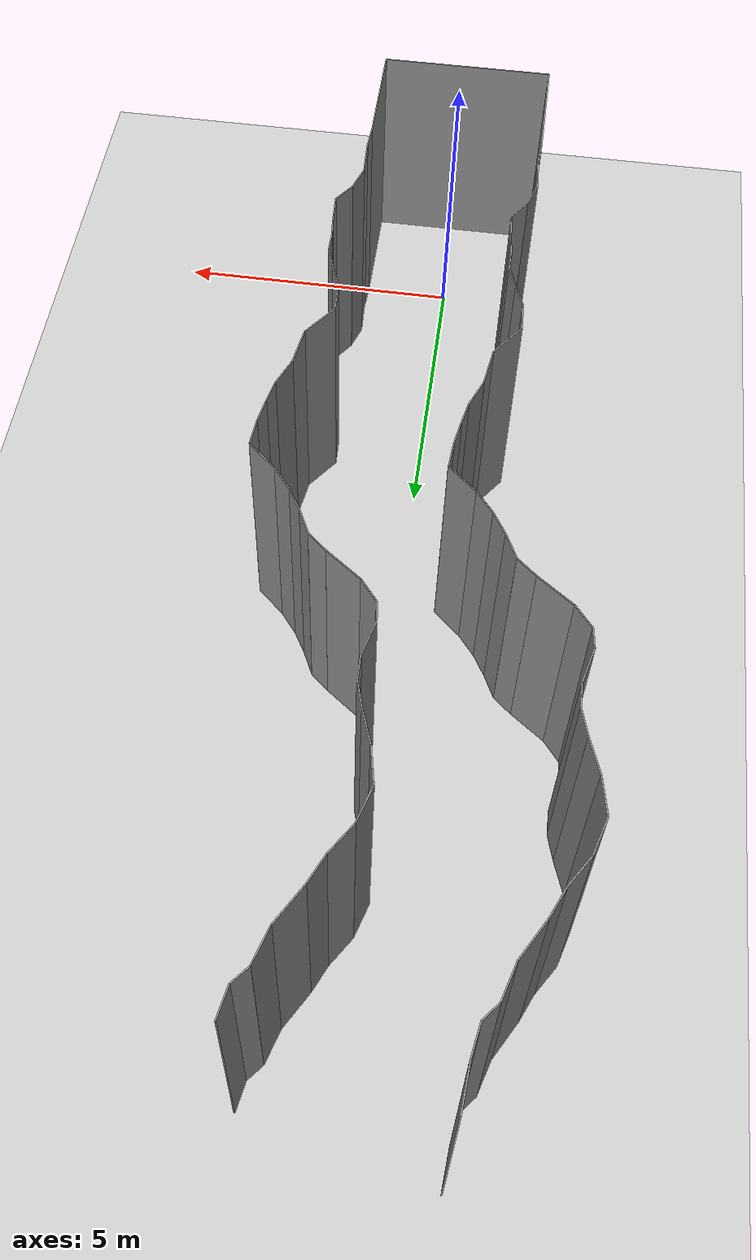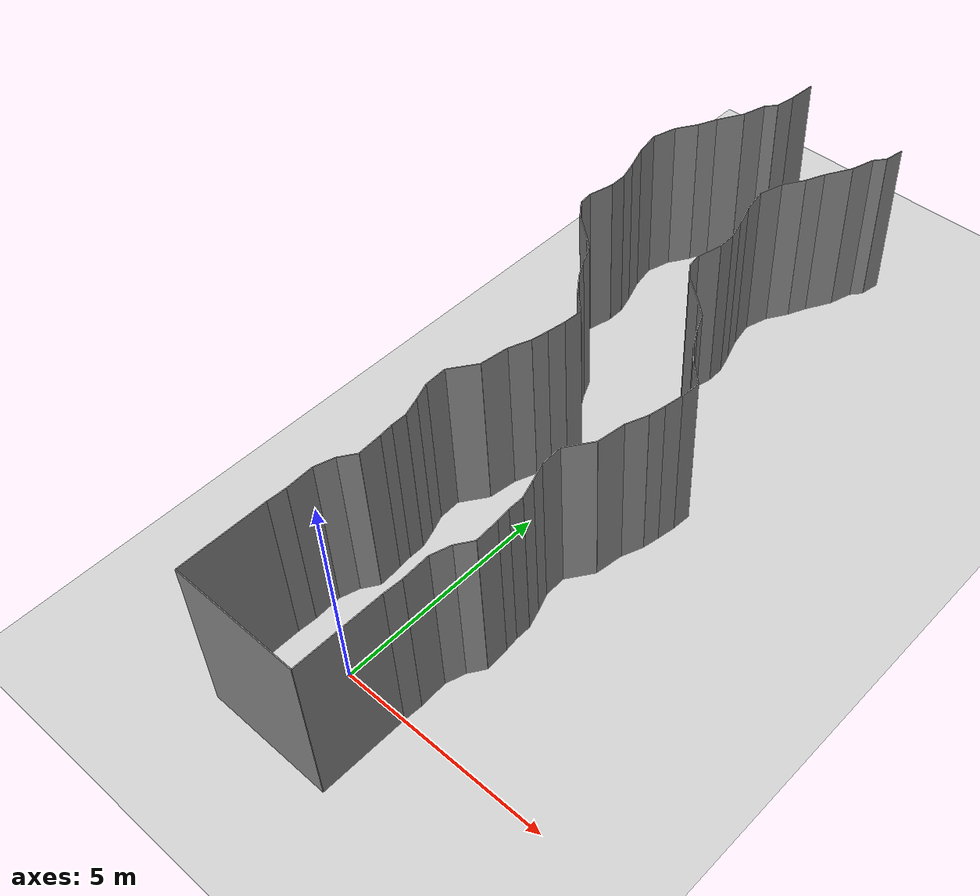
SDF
<sdf version="1.6">
 <world name="default">
  <model name="ground_plane">
   <static>1</static>
   <link name="link">
    <collision name="collision">
     <geometry><plane><normal>0 0 1</normal><size>200 200</size></plane></geometry>
     <surface><friction><ode><mu>100</mu><mu2>50</mu2></ode></friction></surface>
    </collision>
    <visual name="visual">
     <cast_shadows>0</cast_shadows>
     <geometry><plane><normal>0 0 1</normal><size>200 200</size></plane></geometry>
     <material>
      <script><uri>file://media/materials/scripts/gazebo.material</uri><name>Gazebo/Grey</name></script>
     </material>
    </visual>
   </link>
   <pose>0 100 0 0 -0 0</pose>
  </model>
  <model name="wall_back">
   <static>1</static>
   <pose>0.0 -2 2 0.0 0 0.0</pose>
   <link name="link">
    <collision name="collision"><geometry><box><size>3 0.02 4</size></box></geometry></collision>
    <visual name="visual">
     <material>
      <script><name>Gazebo/Grey</name><uri>file://media/materials/scripts/gazebo.material</uri></script>
     </material>
     <geometry><box><size>3 0.02 4</size></box></geometry>
    </visual>
   </link>
  </model>
  <model name="wall_left">
   <static>1</static>
   <pose>1.5 -1 2 0 0 0.00</pose>
   <link name="link">
    <collision name="collision"><geometry><box><size>0.02 2 4</size></box></geometry></collision>
    <visual name="visual">
     <material>
      <script><name>Gazebo/Grey</name><uri>file://media/materials/scripts/gazebo.material</uri></script>
     </material>
     <geometry><box><size>0.02 2 4</size></box></geometry>
    </visual>
   </link>
  </model>
  <model name="wall_right">
   <static>1</static>
   <pose>-1.5 -1 2 0 0 0.00</pose>
   <link name="link">
    <collision name="collision"><geometry><box><size>0.02 2 4</size></box></geometry></collision>
    <visual name="visual">
     <material>
      <script><name>Gazebo/Grey</name><uri>file://media/materials/scripts/gazebo.material</uri></script>
     </material>
     <geometry><box><size>0.02 2 4</size></box></geometry>
    </visual>
   </link>
  </model>
  <model name="wall_0">
   <static>1</static>
   <pose>-1.4882764382496583 0.2142436278795868 2 0 0 -0.05466618233456685</pose>
   <link name="link">
    <collision name="collision"><geometry><box><size>0.02 0.429128297772 4</size></box></geometry></collision>
    <visual name="visual">
     <material>
      <script><name>Gazebo/Grey</name><uri>file://media/materials/scripts/gazebo.material</uri></script>
     </material>
     <geometry><box><size>0.02 0.429128297772 4</size></box></geometry>
    </visual>
   </link>
  </model>
  <model name="wall_1">
   <static>1</static>
   <pose>1.5117235617503417 0.2142436278795868 2 0 0 -0.05466618233456685</pose>
   <link name="link">
    <collision name="collision"><geometry><box><size>0.02 0.429128297772 4</size></box></geometry></collision>
    <visual name="visual">
     <material>
      <script><name>Gazebo/Grey</name><uri>file://media/materials/scripts/gazebo.material</uri></script>
     </material>
     <geometry><box><size>0.02 0.429128297772 4</size></box></geometry>
    </visual>
   </link>
  </model>
  <model name="wall_2">
   <static>1</static>
   <pose>-1.4906252148911652 0.7485332617188468 2 0 0 0.04394143271486499</pose>
   <link name="link">
    <collision name="collision"><geometry><box><size>0.02 0.640710470146 4</size></box></geometry></collision>
    <visual name="visual">
     <material>
      <script><name>Gazebo/Grey</name><uri>file://media/materials/scripts/gazebo.material</uri></script>
     </material>
     <geometry><box><size>0.02 0.640710470146 4</size></box></geometry>
    </visual>
   </link>
  </model>
  <model name="wall_3">
   <static>1</static>
   <pose>1.5093747851088348 0.7485332617188468 2 0 0 0.04394143271486499</pose>
   <link name="link">
    <collision name="collision"><geometry><box><size>0.02 0.640710470146 4</size></box></geometry></collision>
    <visual name="visual">
     <material>
      <script><name>Gazebo/Grey</name><uri>file://media/materials/scripts/gazebo.material</uri></script>
     </material>
     <geometry><box><size>0.02 0.640710470146 4</size></box></geometry>
    </visual>
   </link>
  </model>
  <model name="wall_4">
   <static>1</static>
   <pose>-1.4351299684521113 1.28706230178726 2 0 0 -0.3082616422023971</pose>
   <link name="link">
    <collision name="collision"><geometry><box><size>0.02 0.458582533695 4</size></box></geometry></collision>
    <visual name="visual">
     <material>
      <script><name>Gazebo/Grey</name><uri>file://media/materials/scripts/gazebo.material</uri></script>
     </material>
     <geometry><box><size>0.02 0.458582533695 4</size></box></geometry>
    </visual>
   </link>
  </model>
  <model name="wall_5">
   <static>1</static>
   <pose>1.5648700315478887 1.28706230178726 2 0 0 -0.3082616422023971</pose>
   <link name="link">
    <collision name="collision"><geometry><box><size>0.02 0.458582533695 4</size></box></geometry></collision>
    <visual name="visual">
     <material>
      <script><name>Gazebo/Grey</name><uri>file://media/materials/scripts/gazebo.material</uri></script>
     </material>
     <geometry><box><size>0.02 0.458582533695 4</size></box></geometry>
    </visual>
   </link>
  </model>
  <model name="wall_6">
   <static>1</static>
   <pose>-1.246430500729539 1.6787287137718458 2 0 0 -0.6025551399527813</pose>
   <link name="link">
    <collision name="collision"><geometry><box><size>0.02 0.420404033729 4</size></box></geometry></collision>
    <visual name="visual">
     <material>
      <script><name>Gazebo/Grey</name><uri>file://media/materials/scripts/gazebo.material</uri></script>
     </material>
     <geometry><box><size>0.02 0.420404033729 4</size></box></geometry>
    </visual>
   </link>
  </model>
  <model name="wall_7">
   <static>1</static>
   <pose>1.753569499270461 1.6787287137718458 2 0 0 -0.6025551399527813</pose>
   <link name="link">
    <collision name="collision"><geometry><box><size>0.02 0.420404033729 4</size></box></geometry></collision>
    <visual name="visual">
     <material>
      <script><name>Gazebo/Grey</name><uri>file://media/materials/scripts/gazebo.material</uri></script>
     </material>
     <geometry><box><size>0.02 0.420404033729 4</size></box></geometry>
    </visual>
   </link>
  </model>
  <model name="wall_8">
   <static>1</static>
   <pose>-1.1423110355689778 2.126357916920006 2 0 0 0.054646381465795514</pose>
   <link name="link">
    <collision name="collision"><geometry><box><size>0.02 0.549712229064 4</size></box></geometry></collision>
    <visual name="visual">
     <material>
      <script><name>Gazebo/Grey</name><uri>file://media/materials/scripts/gazebo.material</uri></script>
     </material>
     <geometry><box><size>0.02 0.549712229064 4</size></box></geometry>
    </visual>
   </link>
  </model>
  <model name="wall_9">
   <static>1</static>
   <pose>1.8576889644310222 2.126357916920006 2 0 0 0.054646381465795514</pose>
   <link name="link">
    <collision name="collision"><geometry><box><size>0.02 0.549712229064 4</size></box></geometry></collision>
    <visual name="visual">
     <material>
      <script><name>Gazebo/Grey</name><uri>file://media/materials/scripts/gazebo.material</uri></script>
     </material>
     <geometry><box><size>0.02 0.549712229064 4</size></box></geometry>
    </visual>
   </link>
  </model>
  <model name="wall_10">
   <static>1</static>
   <pose>-1.174572083154149 2.5600124033881193 2 0 0 0.10791885154700406</pose>
   <link name="link">
    <collision name="collision"><geometry><box><size>0.02 0.320280583436 4</size></box></geometry></collision>
    <visual name="visual">
     <material>
      <script><name>Gazebo/Grey</name><uri>file://media/materials/scripts/gazebo.material</uri></script>
     </material>
     <geometry><box><size>0.02 0.320280583436 4</size></box></geometry>
    </visual>
   </link>
  </model>
  <model name="wall_11">
   <static>1</static>
   <pose>1.825427916845851 2.5600124033881193 2 0 0 0.10791885154700406</pose>
   <link name="link">
    <collision name="collision"><geometry><box><size>0.02 0.320280583436 4</size></box></geometry></collision>
    <visual name="visual">
     <material>
      <script><name>Gazebo/Grey</name><uri>file://media/materials/scripts/gazebo.material</uri></script>
     </material>
     <geometry><box><size>0.02 0.320280583436 4</size></box></geometry>
    </visual>
   </link>
  </model>
  <model name="wall_12">
   <static>1</static>
   <pose>-1.1913653444094687 2.899216656177083 2 0 0 -0.0025298821110752733</pose>
   <link name="link">
    <collision name="collision"><geometry><box><size>0.02 0.359992335216 4</size></box></geometry></collision>
    <visual name="visual">
     <material>
      <script><name>Gazebo/Grey</name><uri>file://media/materials/scripts/gazebo.material</uri></script>
     </material>
     <geometry><box><size>0.02 0.359992335216 4</size></box></geometry>
    </visual>
   </link>
  </model>
  <model name="wall_13">
   <static>1</static>
   <pose>1.8086346555905313 2.899216656177083 2 0 0 -0.0025298821110752733</pose>
   <link name="link">
    <collision name="collision"><geometry><box><size>0.02 0.359992335216 4</size></box></geometry></collision>
    <visual name="visual">
     <material>
      <script><name>Gazebo/Grey</name><uri>file://media/materials/scripts/gazebo.material</uri></script>
     </material>
     <geometry><box><size>0.02 0.359992335216 4</size></box></geometry>
    </visual>
   </link>
  </model>
  <model name="wall_14">
   <static>1</static>
   <pose>-1.2577946661947295 3.281178483480198 2 0 0 0.3198002047015978</pose>
   <link name="link">
    <collision name="collision"><geometry><box><size>0.02 0.425506390902 4</size></box></geometry></collision>
    <visual name="visual">
     <material>
      <script><name>Gazebo/Grey</name><uri>file://media/materials/scripts/gazebo.material</uri></script>
     </material>
     <geometry><box><size>0.02 0.425506390902 4</size></box></geometry>
    </visual>
   </link>
  </model>
  <model name="wall_15">
   <static>1</static>
   <pose>1.7422053338052705 3.281178483480198 2 0 0 0.3198002047015978</pose>
   <link name="link">
    <collision name="collision"><geometry><box><size>0.02 0.425506390902 4</size></box></geometry></collision>
    <visual name="visual">
     <material>
      <script><name>Gazebo/Grey</name><uri>file://media/materials/scripts/gazebo.material</uri></script>
     </material>
     <geometry><box><size>0.02 0.425506390902 4</size></box></geometry>
    </visual>
   </link>
  </model>
  <model name="wall_16">
   <static>1</static>
   <pose>-1.3988093052747013 3.678838255260796 2 0 0 0.3621035368704639</pose>
   <link name="link">
    <collision name="collision"><geometry><box><size>0.02 0.418526985288 4</size></box></geometry></collision>
    <visual name="visual">
     <material>
      <script><name>Gazebo/Grey</name><uri>file://media/materials/scripts/gazebo.material</uri></script>
     </material>
     <geometry><box><size>0.02 0.418526985288 4</size></box></geometry>
    </visual>
   </link>
  </model>
  <model name="wall_17">
   <static>1</static>
   <pose>1.6011906947252987 3.678838255260796 2 0 0 0.3621035368704639</pose>
   <link name="link">
    <collision name="collision"><geometry><box><size>0.02 0.418526985288 4</size></box></geometry></collision>
    <visual name="visual">
     <material>
      <script><name>Gazebo/Grey</name><uri>file://media/materials/scripts/gazebo.material</uri></script>
     </material>
     <geometry><box><size>0.02 0.418526985288 4</size></box></geometry>
    </visual>
   </link>
  </model>
  <model name="wall_18">
   <static>1</static>
   <pose>-1.4835313058364274 4.134646809943204 2 0 0 0.04069816215118509</pose>
   <link name="link">
    <collision name="collision"><geometry><box><size>0.02 0.520661173779 4</size></box></geometry></collision>
    <visual name="visual">
     <material>
      <script><name>Gazebo/Grey</name><uri>file://media/materials/scripts/gazebo.material</uri></script>
     </material>
     <geometry><box><size>0.02 0.520661173779 4</size></box></geometry>
    </visual>
   </link>
  </model>
  <model name="wall_19">
   <static>1</static>
   <pose>1.5164686941635726 4.134646809943204 2 0 0 0.04069816215118509</pose>
   <link name="link">
    <collision name="collision"><geometry><box><size>0.02 0.520661173779 4</size></box></geometry></collision>
    <visual name="visual">
     <material>
      <script><name>Gazebo/Grey</name><uri>file://media/materials/scripts/gazebo.material</uri></script>
     </material>
     <geometry><box><size>0.02 0.520661173779 4</size></box></geometry>
    </visual>
   </link>
  </model>
  <model name="wall_20">
   <static>1</static>
   <pose>-1.291361722227489 4.677735634371101 2 0 0 -0.6217396278905083</pose>
   <link name="link">
    <collision name="collision"><geometry><box><size>0.02 0.696236901057 4</size></box></geometry></collision>
    <visual name="visual">
     <material>
      <script><name>Gazebo/Grey</name><uri>file://media/materials/scripts/gazebo.material</uri></script>
     </material>
     <geometry><box><size>0.02 0.696236901057 4</size></box></geometry>
    </visual>
   </link>
  </model>
  <model name="wall_21">
   <static>1</static>
   <pose>1.708638277772511 4.677735634371101 2 0 0 -0.6217396278905083</pose>
   <link name="link">
    <collision name="collision"><geometry><box><size>0.02 0.696236901057 4</size></box></geometry></collision>
    <visual name="visual">
     <material>
      <script><name>Gazebo/Grey</name><uri>file://media/materials/scripts/gazebo.material</uri></script>
     </material>
     <geometry><box><size>0.02 0.696236901057 4</size></box></geometry>
    </visual>
   </link>
  </model>
  <model name="wall_22">
   <static>1</static>
   <pose>-1.0434823716316737 5.284158940186959 2 0 0 -0.13859493508668264</pose>
   <link name="link">
    <collision name="collision"><geometry><box><size>0.02 0.653162115459 4</size></box></geometry></collision>
    <visual name="visual">
     <material>
      <script><name>Gazebo/Grey</name><uri>file://media/materials/scripts/gazebo.material</uri></script>
     </material>
     <geometry><box><size>0.02 0.653162115459 4</size></box></geometry>
    </visual>
   </link>
  </model>
  <model name="wall_23">
   <static>1</static>
   <pose>1.9565176283683263 5.284158940186959 2 0 0 -0.13859493508668264</pose>
   <link name="link">
    <collision name="collision"><geometry><box><size>0.02 0.653162115459 4</size></box></geometry></collision>
    <visual name="visual">
     <material>
      <script><name>Gazebo/Grey</name><uri>file://media/materials/scripts/gazebo.material</uri></script>
     </material>
     <geometry><box><size>0.02 0.653162115459 4</size></box></geometry>
    </visual>
   </link>
  </model>
  <model name="wall_24">
   <static>1</static>
   <pose>-0.9033312365255437 5.846805654554143 2 0 0 -0.37817795014542205</pose>
   <link name="link">
    <collision name="collision"><geometry><box><size>0.02 0.514768523805 4</size></box></geometry></collision>
    <visual name="visual">
     <material>
      <script><name>Gazebo/Grey</name><uri>file://media/materials/scripts/gazebo.material</uri></script>
     </material>
     <geometry><box><size>0.02 0.514768523805 4</size></box></geometry>
    </visual>
   </link>
  </model>
  <model name="wall_25">
   <static>1</static>
   <pose>2.0966687634744563 5.846805654554143 2 0 0 -0.37817795014542205</pose>
   <link name="link">
    <collision name="collision"><geometry><box><size>0.02 0.514768523805 4</size></box></geometry></collision>
    <visual name="visual">
     <material>
      <script><name>Gazebo/Grey</name><uri>file://media/materials/scripts/gazebo.material</uri></script>
     </material>
     <geometry><box><size>0.02 0.514768523805 4</size></box></geometry>
    </visual>
   </link>
  </model>
  <model name="wall_26">
   <static>1</static>
   <pose>-0.7707080896181243 6.274854521695362 2 0 0 -0.19647584731231973</pose>
   <link name="link">
    <collision name="collision"><geometry><box><size>0.02 0.385112629372 4</size></box></geometry></collision>
    <visual name="visual">
     <material>
      <script><name>Gazebo/Grey</name><uri>file://media/materials/scripts/gazebo.material</uri></script>
     </material>
     <geometry><box><size>0.02 0.385112629372 4</size></box></geometry>
    </visual>
   </link>
  </model>
  <model name="wall_27">
   <static>1</static>
   <pose>2.2292919103818756 6.274854521695362 2 0 0 -0.19647584731231973</pose>
   <link name="link">
    <collision name="collision"><geometry><box><size>0.02 0.385112629372 4</size></box></geometry></collision>
    <visual name="visual">
     <material>
      <script><name>Gazebo/Grey</name><uri>file://media/materials/scripts/gazebo.material</uri></script>
     </material>
     <geometry><box><size>0.02 0.385112629372 4</size></box></geometry>
    </visual>
   </link>
  </model>
  <model name="wall_28">
   <static>1</static>
   <pose>-0.6978907470432615 6.674351680986191 2 0 0 -0.16570305118177842</pose>
   <link name="link">
    <collision name="collision"><geometry><box><size>0.02 0.427141729736 4</size></box></geometry></collision>
    <visual name="visual">
     <material>
      <script><name>Gazebo/Grey</name><uri>file://media/materials/scripts/gazebo.material</uri></script>
     </material>
     <geometry><box><size>0.02 0.427141729736 4</size></box></geometry>
    </visual>
   </link>
  </model>
  <model name="wall_29">
   <static>1</static>
   <pose>2.3021092529567384 6.674351680986191 2 0 0 -0.16570305118177842</pose>
   <link name="link">
    <collision name="collision"><geometry><box><size>0.02 0.427141729736 4</size></box></geometry></collision>
    <visual name="visual">
     <material>
      <script><name>Gazebo/Grey</name><uri>file://media/materials/scripts/gazebo.material</uri></script>
     </material>
     <geometry><box><size>0.02 0.427141729736 4</size></box></geometry>
    </visual>
   </link>
  </model>
  <model name="wall_30">
   <static>1</static>
   <pose>-0.6468937416393523 7.1045311742987955 2 0 0 -0.07170803825115375</pose>
   <link name="link">
    <collision name="collision"><geometry><box><size>0.02 0.440199250392 4</size></box></geometry></collision>
    <visual name="visual">
     <material>
      <script><name>Gazebo/Grey</name><uri>file://media/materials/scripts/gazebo.material</uri></script>
     </material>
     <geometry><box><size>0.02 0.440199250392 4</size></box></geometry>
    </visual>
   </link>
  </model>
  <model name="wall_31">
   <static>1</static>
   <pose>2.353106258360648 7.1045311742987955 2 0 0 -0.07170803825115375</pose>
   <link name="link">
    <collision name="collision"><geometry><box><size>0.02 0.440199250392 4</size></box></geometry></collision>
    <visual name="visual">
     <material>
      <script><name>Gazebo/Grey</name><uri>file://media/materials/scripts/gazebo.material</uri></script>
     </material>
     <geometry><box><size>0.02 0.440199250392 4</size></box></geometry>
    </visual>
   </link>
  </model>
  <model name="wall_32">
   <static>1</static>
   <pose>-0.8582554405534828 7.529582275134427 2 0 0 0.8353140544356459</pose>
   <link name="link">
    <collision name="collision"><geometry><box><size>0.02 0.612619998373 4</size></box></geometry></collision>
    <visual name="visual">
     <material>
      <script><name>Gazebo/Grey</name><uri>file://media/materials/scripts/gazebo.material</uri></script>
     </material>
     <geometry><box><size>0.02 0.612619998373 4</size></box></geometry>
    </visual>
   </link>
  </model>
  <model name="wall_33">
   <static>1</static>
   <pose>2.141744559446517 7.529582275134427 2 0 0 0.8353140544356459</pose>
   <link name="link">
    <collision name="collision"><geometry><box><size>0.02 0.612619998373 4</size></box></geometry></collision>
    <visual name="visual">
     <material>
      <script><name>Gazebo/Grey</name><uri>file://media/materials/scripts/gazebo.material</uri></script>
     </material>
     <geometry><box><size>0.02 0.612619998373 4</size></box></geometry>
    </visual>
   </link>
  </model>
  <model name="wall_34">
   <static>1</static>
   <pose>-1.2252234323262905 7.91197370236085 2 0 0 0.6689831428733833</pose>
   <link name="link">
    <collision name="collision"><geometry><box><size>0.02 0.450949585367 4</size></box></geometry></collision>
    <visual name="visual">
     <material>
      <script><name>Gazebo/Grey</name><uri>file://media/materials/scripts/gazebo.material</uri></script>
     </material>
     <geometry><box><size>0.02 0.450949585367 4</size></box></geometry>
    </visual>
   </link>
  </model>
  <model name="wall_35">
   <static>1</static>
   <pose>1.7747765676737095 7.91197370236085 2 0 0 0.6689831428733833</pose>
   <link name="link">
    <collision name="collision"><geometry><box><size>0.02 0.450949585367 4</size></box></geometry></collision>
    <visual name="visual">
     <material>
      <script><name>Gazebo/Grey</name><uri>file://media/materials/scripts/gazebo.material</uri></script>
     </material>
     <geometry><box><size>0.02 0.450949585367 4</size></box></geometry>
    </visual>
   </link>
  </model>
  <model name="wall_36">
   <static>1</static>
   <pose>-1.4694159097178903 8.266232441602584 2 0 0 0.5317734631163602</pose>
   <link name="link">
    <collision name="collision"><geometry><box><size>0.02 0.411608165571 4</size></box></geometry></collision>
    <visual name="visual">
     <material>
      <script><name>Gazebo/Grey</name><uri>file://media/materials/scripts/gazebo.material</uri></script>
     </material>
     <geometry><box><size>0.02 0.411608165571 4</size></box></geometry>
    </visual>
   </link>
  </model>
  <model name="wall_37">
   <static>1</static>
   <pose>1.5305840902821097 8.266232441602584 2 0 0 0.5317734631163602</pose>
   <link name="link">
    <collision name="collision"><geometry><box><size>0.02 0.411608165571 4</size></box></geometry></collision>
    <visual name="visual">
     <material>
      <script><name>Gazebo/Grey</name><uri>file://media/materials/scripts/gazebo.material</uri></script>
     </material>
     <geometry><box><size>0.02 0.411608165571 4</size></box></geometry>
    </visual>
   </link>
  </model>
  <model name="wall_38">
   <static>1</static>
   <pose>-1.6702580753962393 8.64240468940797 2 0 0 0.45187911080128523</pose>
   <link name="link">
    <collision name="collision"><geometry><box><size>0.02 0.441933299922 4</size></box></geometry></collision>
    <visual name="visual">
     <material>
      <script><name>Gazebo/Grey</name><uri>file://media/materials/scripts/gazebo.material</uri></script>
     </material>
     <geometry><box><size>0.02 0.441933299922 4</size></box></geometry>
    </visual>
   </link>
  </model>
  <model name="wall_39">
   <static>1</static>
   <pose>1.3297419246037607 8.64240468940797 2 0 0 0.45187911080128523</pose>
   <link name="link">
    <collision name="collision"><geometry><box><size>0.02 0.441933299922 4</size></box></geometry></collision>
    <visual name="visual">
     <material>
      <script><name>Gazebo/Grey</name><uri>file://media/materials/scripts/gazebo.material</uri></script>
     </material>
     <geometry><box><size>0.02 0.441933299922 4</size></box></geometry>
    </visual>
   </link>
  </model>
  <model name="wall_40">
   <static>1</static>
   <pose>-1.9162545087971874 8.970234238321153 2 0 0 0.8587468627552496</pose>
   <link name="link">
    <collision name="collision"><geometry><box><size>0.02 0.394993469345 4</size></box></geometry></collision>
    <visual name="visual">
     <material>
      <script><name>Gazebo/Grey</name><uri>file://media/materials/scripts/gazebo.material</uri></script>
     </material>
     <geometry><box><size>0.02 0.394993469345 4</size></box></geometry>
    </visual>
   </link>
  </model>
  <model name="wall_41">
   <static>1</static>
   <pose>1.0837454912028126 8.970234238321153 2 0 0 0.8587468627552496</pose>
   <link name="link">
    <collision name="collision"><geometry><box><size>0.02 0.394993469345 4</size></box></geometry></collision>
    <visual name="visual">
     <material>
      <script><name>Gazebo/Grey</name><uri>file://media/materials/scripts/gazebo.material</uri></script>
     </material>
     <geometry><box><size>0.02 0.394993469345 4</size></box></geometry>
    </visual>
   </link>
  </model>
  <model name="wall_42">
   <static>1</static>
   <pose>-2.3441185255960963 9.305867519616344 2 0 0 0.9323126875459886</pose>
   <link name="link">
    <collision name="collision"><geometry><box><size>0.02 0.693285271336 4</size></box></geometry></collision>
    <visual name="visual">
     <material>
      <script><name>Gazebo/Grey</name><uri>file://media/materials/scripts/gazebo.material</uri></script>
     </material>
     <geometry><box><size>0.02 0.693285271336 4</size></box></geometry>
    </visual>
   </link>
  </model>
  <model name="wall_43">
   <static>1</static>
   <pose>0.6558814744039037 9.305867519616344 2 0 0 0.9323126875459886</pose>
   <link name="link">
    <collision name="collision"><geometry><box><size>0.02 0.693285271336 4</size></box></geometry></collision>
    <visual name="visual">
     <material>
      <script><name>Gazebo/Grey</name><uri>file://media/materials/scripts/gazebo.material</uri></script>
     </material>
     <geometry><box><size>0.02 0.693285271336 4</size></box></geometry>
    </visual>
   </link>
  </model>
  <model name="wall_44">
   <static>1</static>
   <pose>-2.7574374389931626 9.680984901777562 2 0 0 0.6752620178453725</pose>
   <link name="link">
    <collision name="collision"><geometry><box><size>0.02 0.431816791613 4</size></box></geometry></collision>
    <visual name="visual">
     <material>
      <script><name>Gazebo/Grey</name><uri>file://media/materials/scripts/gazebo.material</uri></script>
     </material>
     <geometry><box><size>0.02 0.431816791613 4</size></box></geometry>
    </visual>
   </link>
  </model>
  <model name="wall_45">
   <static>1</static>
   <pose>0.24256256100683737 9.680984901777562 2 0 0 0.6752620178453725</pose>
   <link name="link">
    <collision name="collision"><geometry><box><size>0.02 0.431816791613 4</size></box></geometry></collision>
    <visual name="visual">
     <material>
      <script><name>Gazebo/Grey</name><uri>file://media/materials/scripts/gazebo.material</uri></script>
     </material>
     <geometry><box><size>0.02 0.431816791613 4</size></box></geometry>
    </visual>
   </link>
  </model>
  <model name="wall_46">
   <static>1</static>
   <pose>-2.912614911732244 10.011275955388916 2 0 0 0.12430679334028681</pose>
   <link name="link">
    <collision name="collision"><geometry><box><size>0.02 0.326046271739 4</size></box></geometry></collision>
    <visual name="visual">
     <material>
      <script><name>Gazebo/Grey</name><uri>file://media/materials/scripts/gazebo.material</uri></script>
     </material>
     <geometry><box><size>0.02 0.326046271739 4</size></box></geometry>
    </visual>
   </link>
  </model>
  <model name="wall_47">
   <static>1</static>
   <pose>0.08738508826775604 10.011275955388916 2 0 0 0.12430679334028681</pose>
   <link name="link">
    <collision name="collision"><geometry><box><size>0.02 0.326046271739 4</size></box></geometry></collision>
    <visual name="visual">
     <material>
      <script><name>Gazebo/Grey</name><uri>file://media/materials/scripts/gazebo.material</uri></script>
     </material>
     <geometry><box><size>0.02 0.326046271739 4</size></box></geometry>
    </visual>
   </link>
  </model>
  <model name="wall_48">
   <static>1</static>
   <pose>-2.8625477616231083 10.453642308325819 2 0 0 -0.2454133209354726</pose>
   <link name="link">
    <collision name="collision"><geometry><box><size>0.02 0.578536964427 4</size></box></geometry></collision>
    <visual name="visual">
     <material>
      <script><name>Gazebo/Grey</name><uri>file://media/materials/scripts/gazebo.material</uri></script>
     </material>
     <geometry><box><size>0.02 0.578536964427 4</size></box></geometry>
    </visual>
   </link>
  </model>
  <model name="wall_49">
   <static>1</static>
   <pose>0.1374522383768917 10.453642308325819 2 0 0 -0.2454133209354726</pose>
   <link name="link">
    <collision name="collision"><geometry><box><size>0.02 0.578536964427 4</size></box></geometry></collision>
    <visual name="visual">
     <material>
      <script><name>Gazebo/Grey</name><uri>file://media/materials/scripts/gazebo.material</uri></script>
     </material>
     <geometry><box><size>0.02 0.578536964427 4</size></box></geometry>
    </visual>
   </link>
  </model>
  <model name="wall_50">
   <static>1</static>
   <pose>-2.794264964281337 10.93220077968322 2 0 0 0.010088128646324556</pose>
   <link name="link">
    <collision name="collision"><geometry><box><size>0.02 0.395934835046 4</size></box></geometry></collision>
    <visual name="visual">
     <material>
      <script><name>Gazebo/Grey</name><uri>file://media/materials/scripts/gazebo.material</uri></script>
     </material>
     <geometry><box><size>0.02 0.395934835046 4</size></box></geometry>
    </visual>
   </link>
  </model>
  <model name="wall_51">
   <static>1</static>
   <pose>0.20573503571866292 10.93220077968322 2 0 0 0.010088128646324556</pose>
   <link name="link">
    <collision name="collision"><geometry><box><size>0.02 0.395934835046 4</size></box></geometry></collision>
    <visual name="visual">
     <material>
      <script><name>Gazebo/Grey</name><uri>file://media/materials/scripts/gazebo.material</uri></script>
     </material>
     <geometry><box><size>0.02 0.395934835046 4</size></box></geometry>
    </visual>
   </link>
  </model>
  <model name="wall_52">
   <static>1</static>
   <pose>-2.857294968850871 11.33792524997233 2 0 0 0.28571889998937416</pose>
   <link name="link">
    <collision name="collision"><geometry><box><size>0.02 0.433092118628 4</size></box></geometry></collision>
    <visual name="visual">
     <material>
      <script><name>Gazebo/Grey</name><uri>file://media/materials/scripts/gazebo.material</uri></script>
     </material>
     <geometry><box><size>0.02 0.433092118628 4</size></box></geometry>
    </visual>
   </link>
  </model>
  <model name="wall_53">
   <static>1</static>
   <pose>0.1427050311491289 11.33792524997233 2 0 0 0.28571889998937416</pose>
   <link name="link">
    <collision name="collision"><geometry><box><size>0.02 0.433092118628 4</size></box></geometry></collision>
    <visual name="visual">
     <material>
      <script><name>Gazebo/Grey</name><uri>file://media/materials/scripts/gazebo.material</uri></script>
     </material>
     <geometry><box><size>0.02 0.433092118628 4</size></box></geometry>
    </visual>
   </link>
  </model>
  <model name="wall_54">
   <static>1</static>
   <pose>-3.0135029106652866 11.809593357492517 2 0 0 0.3461279866709444</pose>
   <link name="link">
    <collision name="collision"><geometry><box><size>0.02 0.561077581507 4</size></box></geometry></collision>
    <visual name="visual">
     <material>
      <script><name>Gazebo/Grey</name><uri>file://media/materials/scripts/gazebo.material</uri></script>
     </material>
     <geometry><box><size>0.02 0.561077581507 4</size></box></geometry>
    </visual>
   </link>
  </model>
  <model name="wall_55">
   <static>1</static>
   <pose>-0.013502910665286638 11.809593357492517 2 0 0 0.3461279866709444</pose>
   <link name="link">
    <collision name="collision"><geometry><box><size>0.02 0.561077581507 4</size></box></geometry></collision>
    <visual name="visual">
     <material>
      <script><name>Gazebo/Grey</name><uri>file://media/materials/scripts/gazebo.material</uri></script>
     </material>
     <geometry><box><size>0.02 0.561077581507 4</size></box></geometry>
    </visual>
   </link>
  </model>
  <model name="wall_56">
   <static>1</static>
   <pose>-3.1654130749152403 12.362162091811154 2 0 0 0.19406770105616922</pose>
   <link name="link">
    <collision name="collision"><geometry><box><size>0.02 0.588380651598 4</size></box></geometry></collision>
    <visual name="visual">
     <material>
      <script><name>Gazebo/Grey</name><uri>file://media/materials/scripts/gazebo.material</uri></script>
     </material>
     <geometry><box><size>0.02 0.588380651598 4</size></box></geometry>
    </visual>
   </link>
  </model>
  <model name="wall_57">
   <static>1</static>
   <pose>-0.16541307491524027 12.362162091811154 2 0 0 0.19406770105616922</pose>
   <link name="link">
    <collision name="collision"><geometry><box><size>0.02 0.588380651598 4</size></box></geometry></collision>
    <visual name="visual">
     <material>
      <script><name>Gazebo/Grey</name><uri>file://media/materials/scripts/gazebo.material</uri></script>
     </material>
     <geometry><box><size>0.02 0.588380651598 4</size></box></geometry>
    </visual>
   </link>
  </model>
  <model name="wall_58">
   <static>1</static>
   <pose>-3.1417000679136193 12.926324544161506 2 0 0 -0.2841136398644825</pose>
   <link name="link">
    <collision name="collision"><geometry><box><size>0.02 0.574000814271 4</size></box></geometry></collision>
    <visual name="visual">
     <material>
      <script><name>Gazebo/Grey</name><uri>file://media/materials/scripts/gazebo.material</uri></script>
     </material>
     <geometry><box><size>0.02 0.574000814271 4</size></box></geometry>
    </visual>
   </link>
  </model>
  <model name="wall_59">
   <static>1</static>
   <pose>-0.14170006791361933 12.926324544161506 2 0 0 -0.2841136398644825</pose>
   <link name="link">
    <collision name="collision"><geometry><box><size>0.02 0.574000814271 4</size></box></geometry></collision>
    <visual name="visual">
     <material>
      <script><name>Gazebo/Grey</name><uri>file://media/materials/scripts/gazebo.material</uri></script>
     </material>
     <geometry><box><size>0.02 0.574000814271 4</size></box></geometry>
    </visual>
   </link>
  </model>
  <model name="wall_60">
   <static>1</static>
   <pose>-2.911932987814852 13.434280872905925 2 0 0 -0.5709700416227554</pose>
   <link name="link">
    <collision name="collision"><geometry><box><size>0.02 0.552574168525 4</size></box></geometry></collision>
    <visual name="visual">
     <material>
      <script><name>Gazebo/Grey</name><uri>file://media/materials/scripts/gazebo.material</uri></script>
     </material>
     <geometry><box><size>0.02 0.552574168525 4</size></box></geometry>
    </visual>
   </link>
  </model>
  <model name="wall_61">
   <static>1</static>
   <pose>0.08806701218514812 13.434280872905925 2 0 0 -0.5709700416227554</pose>
   <link name="link">
    <collision name="collision"><geometry><box><size>0.02 0.552574168525 4</size></box></geometry></collision>
    <visual name="visual">
     <material>
      <script><name>Gazebo/Grey</name><uri>file://media/materials/scripts/gazebo.material</uri></script>
     </material>
     <geometry><box><size>0.02 0.552574168525 4</size></box></geometry>
    </visual>
   </link>
  </model>
  <model name="wall_62">
   <static>1</static>
   <pose>-2.6664060476949 13.881382159454951 2 0 0 -0.4213813037965827</pose>
   <link name="link">
    <collision name="collision"><geometry><box><size>0.02 0.470430283984 4</size></box></geometry></collision>
    <visual name="visual">
     <material>
      <script><name>Gazebo/Grey</name><uri>file://media/materials/scripts/gazebo.material</uri></script>
     </material>
     <geometry><box><size>0.02 0.470430283984 4</size></box></geometry>
    </visual>
   </link>
  </model>
  <model name="wall_63">
   <static>1</static>
   <pose>0.33359395230510014 13.881382159454951 2 0 0 -0.4213813037965827</pose>
   <link name="link">
    <collision name="collision"><geometry><box><size>0.02 0.470430283984 4</size></box></geometry></collision>
    <visual name="visual">
     <material>
      <script><name>Gazebo/Grey</name><uri>file://media/materials/scripts/gazebo.material</uri></script>
     </material>
     <geometry><box><size>0.02 0.470430283984 4</size></box></geometry>
    </visual>
   </link>
  </model>
  <model name="wall_64">
   <static>1</static>
   <pose>-2.402261717815582 14.387439500487268 2 0 0 -0.5227909098934341</pose>
   <link name="link">
    <collision name="collision"><geometry><box><size>0.02 0.672686777113 4</size></box></geometry></collision>
    <visual name="visual">
     <material>
      <script><name>Gazebo/Grey</name><uri>file://media/materials/scripts/gazebo.material</uri></script>
     </material>
     <geometry><box><size>0.02 0.672686777113 4</size></box></geometry>
    </visual>
   </link>
  </model>
  <model name="wall_65">
   <static>1</static>
   <pose>0.5977382821844182 14.387439500487268 2 0 0 -0.5227909098934341</pose>
   <link name="link">
    <collision name="collision"><geometry><box><size>0.02 0.672686777113 4</size></box></geometry></collision>
    <visual name="visual">
     <material>
      <script><name>Gazebo/Grey</name><uri>file://media/materials/scripts/gazebo.material</uri></script>
     </material>
     <geometry><box><size>0.02 0.672686777113 4</size></box></geometry>
    </visual>
   </link>
  </model>
  <model name="wall_66">
   <static>1</static>
   <pose>-2.1539505266018044 14.947563273749724 2 0 0 -0.29064756201143394</pose>
   <link name="link">
    <collision name="collision"><geometry><box><size>0.02 0.560938791339 4</size></box></geometry></collision>
    <visual name="visual">
     <material>
      <script><name>Gazebo/Grey</name><uri>file://media/materials/scripts/gazebo.material</uri></script>
     </material>
     <geometry><box><size>0.02 0.560938791339 4</size></box></geometry>
    </visual>
   </link>
  </model>
  <model name="wall_67">
   <static>1</static>
   <pose>0.8460494733981956 14.947563273749724 2 0 0 -0.29064756201143394</pose>
   <link name="link">
    <collision name="collision"><geometry><box><size>0.02 0.560938791339 4</size></box></geometry></collision>
    <visual name="visual">
     <material>
      <script><name>Gazebo/Grey</name><uri>file://media/materials/scripts/gazebo.material</uri></script>
     </material>
     <geometry><box><size>0.02 0.560938791339 4</size></box></geometry>
    </visual>
   </link>
  </model>
  <model name="wall_68">
   <static>1</static>
   <pose>-1.9713303611734663 15.339778036674165 2 0 0 -0.691486945215687</pose>
   <link name="link">
    <collision name="collision"><geometry><box><size>0.02 0.320677365664 4</size></box></geometry></collision>
    <visual name="visual">
     <material>
      <script><name>Gazebo/Grey</name><uri>file://media/materials/scripts/gazebo.material</uri></script>
     </material>
     <geometry><box><size>0.02 0.320677365664 4</size></box></geometry>
    </visual>
   </link>
  </model>
  <model name="wall_69">
   <static>1</static>
   <pose>1.0286696388265337 15.339778036674165 2 0 0 -0.691486945215687</pose>
   <link name="link">
    <collision name="collision"><geometry><box><size>0.02 0.320677365664 4</size></box></geometry></collision>
    <visual name="visual">
     <material>
      <script><name>Gazebo/Grey</name><uri>file://media/materials/scripts/gazebo.material</uri></script>
     </material>
     <geometry><box><size>0.02 0.320677365664 4</size></box></geometry>
    </visual>
   </link>
  </model>
  <model name="wall_70">
   <static>1</static>
   <pose>-1.8287274801428417 15.692325833055397 2 0 0 -0.17441354222587888</pose>
   <link name="link">
    <collision name="collision"><geometry><box><size>0.02 0.465135052838 4</size></box></geometry></collision>
    <visual name="visual">
     <material>
      <script><name>Gazebo/Grey</name><uri>file://media/materials/scripts/gazebo.material</uri></script>
     </material>
     <geometry><box><size>0.02 0.465135052838 4</size></box></geometry>
    </visual>
   </link>
  </model>
  <model name="wall_71">
   <static>1</static>
   <pose>1.1712725198571583 15.692325833055397 2 0 0 -0.17441354222587888</pose>
   <link name="link">
    <collision name="collision"><geometry><box><size>0.02 0.465135052838 4</size></box></geometry></collision>
    <visual name="visual">
     <material>
      <script><name>Gazebo/Grey</name><uri>file://media/materials/scripts/gazebo.material</uri></script>
     </material>
     <geometry><box><size>0.02 0.465135052838 4</size></box></geometry>
    </visual>
   </link>
  </model>
  <model name="wall_72">
   <static>1</static>
   <pose>-1.763380563189054 16.24686806776108 2 0 0 -0.07662111483931414</pose>
   <link name="link">
    <collision name="collision"><geometry><box><size>0.02 0.652921871732 4</size></box></geometry></collision>
    <visual name="visual">
     <material>
      <script><name>Gazebo/Grey</name><uri>file://media/materials/scripts/gazebo.material</uri></script>
     </material>
     <geometry><box><size>0.02 0.652921871732 4</size></box></geometry>
    </visual>
   </link>
  </model>
 </world>
</sdf>
